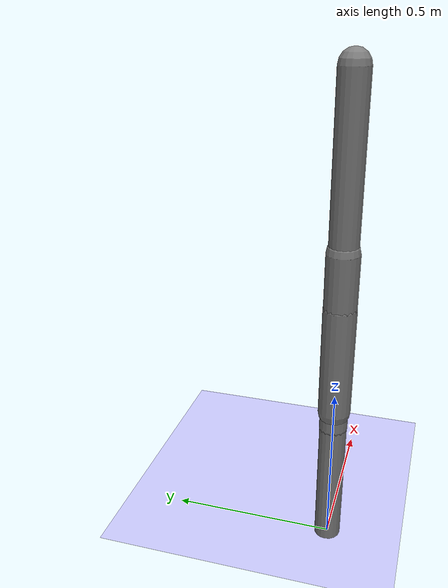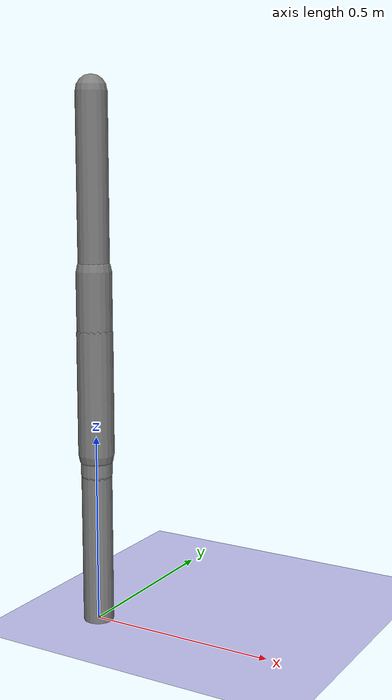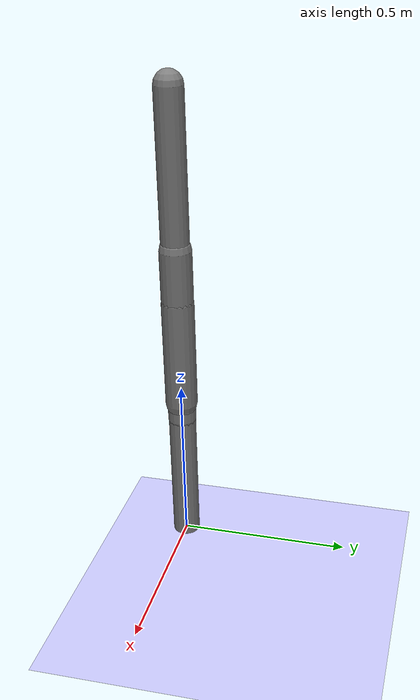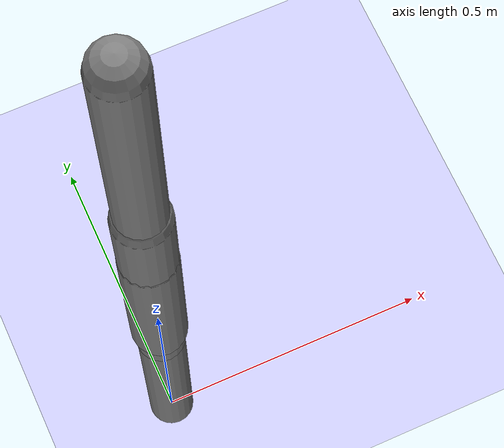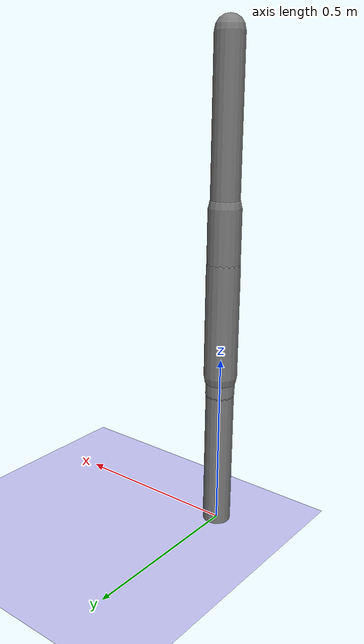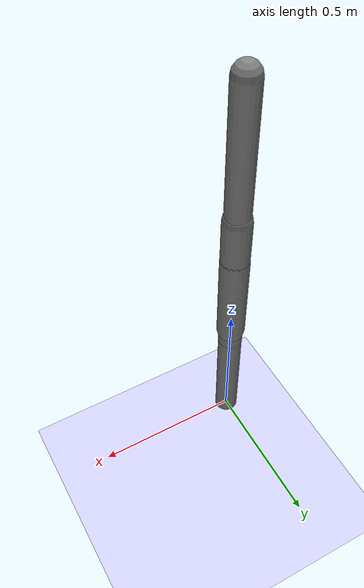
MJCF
<?xml version='1.0' encoding='UTF-8'?>
<mujoco model="robot_model">
  <worldbody>
    <light name="light" pos="0 -3 10" dir="0 0.5 -1" diffuse=".8 .8 .8" specular="0.1 0.1 0.1"/>
    <geom name="floor" type="plane" size="10.0 10.0 0.1" pos="0 0 0" rgba="0.8 0.8 1 1" contype="2" conaffinity="1"/>
    <body name="limb0" pos="0 0 0">
      <geom type="capsule" fromto="0 0 0 0 0 0.6" size="0.04" density="644.2717112743811" contype="1" conaffinity="2"/>
      <site type="sphere" size="0.01" name="limb0_site0" pos="0 0 0.3147693756185692"/>
      <site type="sphere" size="0.01" name="limb0_site1" pos="0 0 0.5044662501644708"/>
      <freejoint name="limb0_root"/>
      <body name="limb1" pos="0 0 0.3147693756185692">
        <geom type="capsule" fromto="0 0 0 0 0 0.22374799158173964" size="0.029119176085318315" density="452.1334187822219" contype="1" conaffinity="2"/>
        <site type="sphere" size="0.01" name="limb1_site0" pos="0 0 0.13959699440114137"/>
        <site type="sphere" size="0.01" name="limb1_site1" pos="0 0 0.0856592355920472"/>
        <site type="sphere" size="0.01" name="limb1_site2" pos="0 0 0.19102740956826053"/>
        <body name="limb2" pos="0 0 0.13959699440114137">
          <geom type="capsule" fromto="0 0 0 0 0 0.32331157919001374" size="0.04703069767789839" density="709.8359320414992" contype="1" conaffinity="2"/>
          <joint name="joint_limb1_limb2_0" type="hinge" axis="0 1 0" range="-82.7424809592319 82.7424809592319" damping="5.0"/>
        </body>
        <body name="limb3" pos="0 0 0.0856592355920472">
          <geom type="capsule" fromto="0 0 0 0 0 0.31506302920139795" size="0.04118448157082622" density="1024.7729175917539" contype="1" conaffinity="2"/>
          <site type="sphere" size="0.01" name="limb3_site0" pos="0 0 0.31490592373299237"/>
          <body name="limb4" pos="0 0 0.31490592373299237">
            <geom type="capsule" fromto="0 0 0 0 0 0.45795342429609504" size="0.03639223501096853" density="583.351130555626" contype="1" conaffinity="2"/>
            <joint name="joint_limb3_limb4_0" type="hinge" axis="0 1 0" range="-97.60316524447805 97.60316524447805" damping="5.0"/>
          </body>
          <joint name="joint_limb1_limb3_0" type="hinge" axis="1 0 0" range="-76.57739072162552 76.57739072162552" damping="5.0"/>
        </body>
        <body name="limb5" pos="0 0 0.19102740956826053">
          <geom type="capsule" fromto="0 0 0 0 0 0.4727806644286577" size="0.03794159670294999" density="1047.9904850783728" contype="1" conaffinity="2"/>
          <site type="sphere" size="0.01" name="limb5_site0" pos="0 0 0.2278818572451243"/>
          <site type="sphere" size="0.01" name="limb5_site1" pos="0 0 0.416773953600797"/>
          <body name="limb6" pos="0 0 0.2278818572451243">
            <geom type="capsule" fromto="0 0 0 0 0 0.19942307054689806" size="0.04609395862756084" density="1147.4288306062897" contype="1" conaffinity="2"/>
            <joint name="joint_limb5_limb6_0" type="hinge" axis="0 0 1" range="-97.3556228309299 97.3556228309299" damping="5.0"/>
          </body>
          <body name="limb7" pos="0 0 0.416773953600797">
            <geom type="capsule" fromto="0 0 0 0 0 0.4558236432736898" size="0.040393786555888975" density="1054.6511241400187" contype="1" conaffinity="2"/>
            <joint name="joint_limb5_limb7_0" type="hinge" axis="0 1 0" range="-118.69762092772474 118.69762092772474" damping="5.0"/>
          </body>
          <joint name="joint_limb1_limb5_0" type="hinge" axis="0 1 0" range="-106.84257521657214 106.84257521657214" damping="5.0"/>
        </body>
        <joint name="joint_limb0_limb1_0" type="hinge" axis="0 1 0" range="-105.32012538048721 105.32012538048721" damping="5.0"/>
      </body>
      <body name="limb8" pos="0 0 0.5044662501644708">
        <geom type="capsule" fromto="0 0 0 0 0 0.16901349670638882" size="0.029773060920250092" density="867.1563718257595" contype="1" conaffinity="2"/>
        <joint name="joint_limb0_limb8_0" type="hinge" axis="0 1 0" range="-63.22844417036358 63.22844417036358" damping="5.0"/>
      </body>
    </body>
  </worldbody>
  <actuator>
    <position name="position_actuator_joint_limb0_limb1_0" joint="joint_limb0_limb1_0" gear="0.9772188059097339" inheritrange="1" kp="10.0"/>
    <position name="position_actuator_joint_limb1_limb2_0" joint="joint_limb1_limb2_0" gear="0.7360723872815542" inheritrange="1" kp="10.0"/>
    <position name="position_actuator_joint_limb1_limb3_0" joint="joint_limb1_limb3_0" gear="1.9786544527946286" inheritrange="1" kp="10.0"/>
    <position name="position_actuator_joint_limb3_limb4_0" joint="joint_limb3_limb4_0" gear="1.7459471619076385" inheritrange="1" kp="10.0"/>
    <position name="position_actuator_joint_limb1_limb5_0" joint="joint_limb1_limb5_0" gear="1.4252429185165156" inheritrange="1" kp="10.0"/>
    <position name="position_actuator_joint_limb5_limb6_0" joint="joint_limb5_limb6_0" gear="1.2514069354827302" inheritrange="1" kp="10.0"/>
    <position name="position_actuator_joint_limb5_limb7_0" joint="joint_limb5_limb7_0" gear="1.7310688920449273" inheritrange="1" kp="10.0"/>
    <position name="position_actuator_joint_limb0_limb8_0" joint="joint_limb0_limb8_0" gear="1.068427433655958" inheritrange="1" kp="10.0"/>
  </actuator>
</mujoco>
